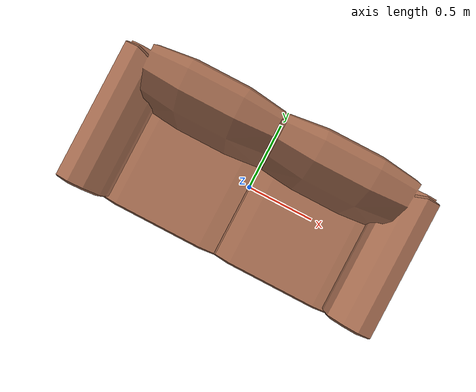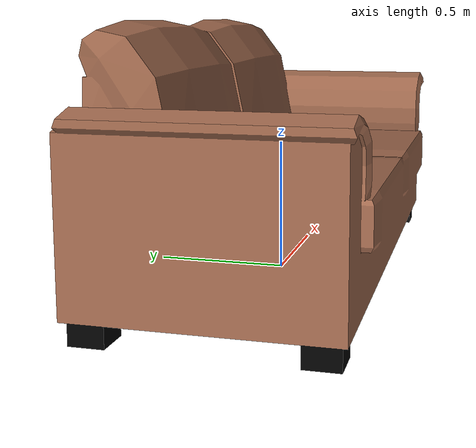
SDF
<?xml version='1.0'?>
<sdf version="1.4">
	<model name="sofa">
		<static>1</static>
		<link name="link">
			<visual name="mesh">
				<geometry>
					<mesh>
						<uri>model://meshes/sofa.dae</uri>
					</mesh>
				</geometry>
			</visual>
			<collision name="collider">
				<pose>0 0 0.45 0 0 0</pose>
				<geometry>
					<box>
						<size>2.03 0.966 0.9</size>
					</box>
				</geometry>
			</collision>
		</link>
	</model>
</sdf>
